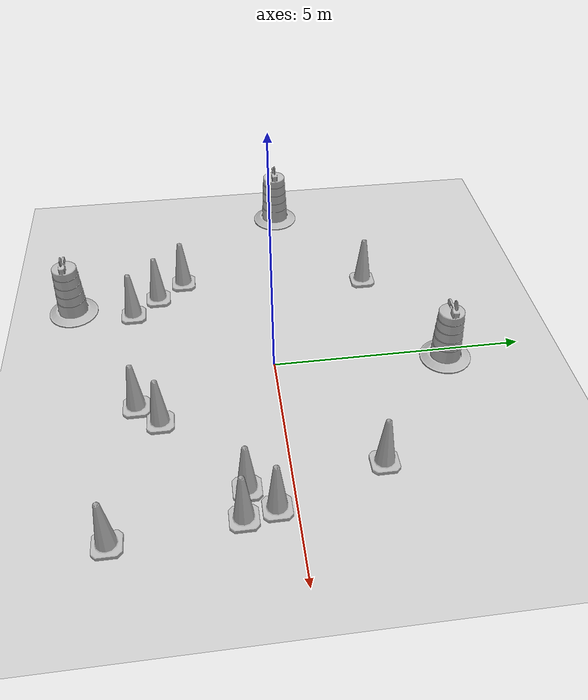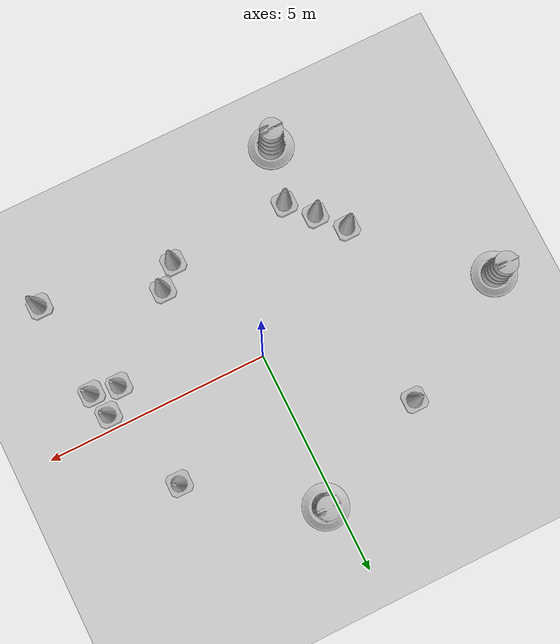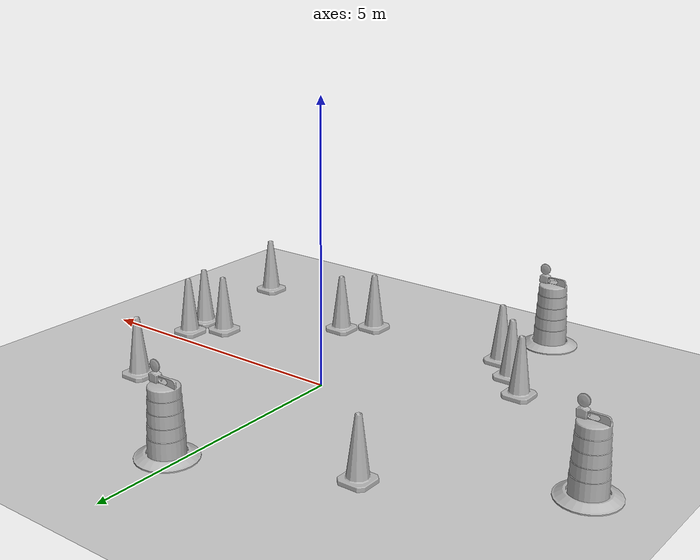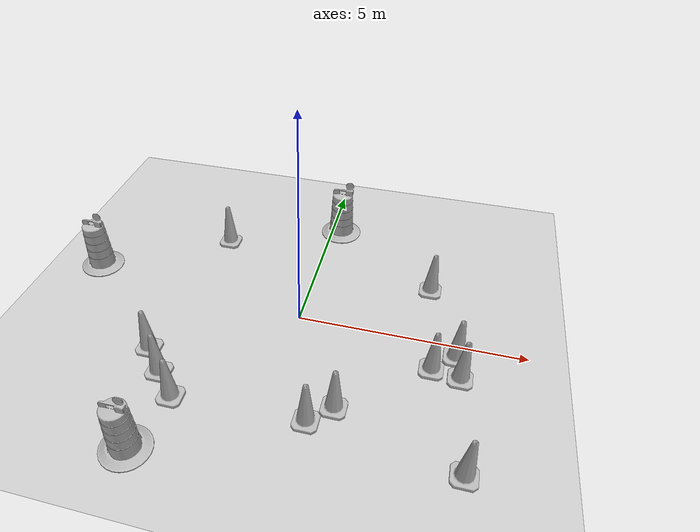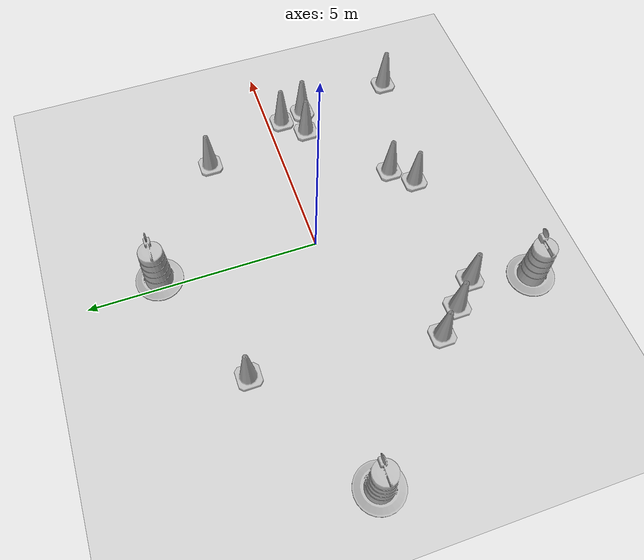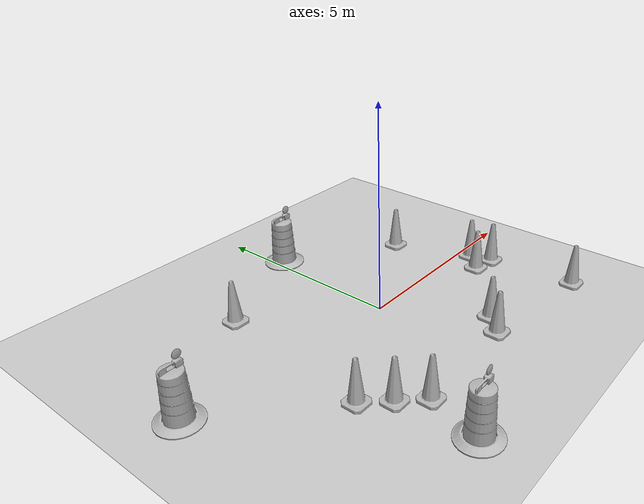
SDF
<sdf version="1.7">
 <world name="default">
  <light name="sun" type="directional">
   <pose>0 0 10 0 -0 0</pose>
   <diffuse>0.8 0.8 0.8 1</diffuse>
   <specular>0.2 0.2 0.2 1</specular>
   <attenuation>
    <range>1000</range>
    <constant>0.9</constant>
    <linear>0.01</linear>
    <quadratic>0.001</quadratic>
   </attenuation>
   <direction>-0.5 0.1 -0.9</direction>
   <spot><inner_angle>0</inner_angle><outer_angle>0</outer_angle><falloff>0</falloff></spot>
  </light>
  <model name="ground_plane">
   <static>1</static>
   <link name="link">
    <collision name="collision">
     <geometry><plane><normal>0 0 1</normal><size>100 100</size></plane></geometry>
     <surface>
      <contact><collide_bitmask>65535</collide_bitmask></contact>
      <friction><ode><mu>100</mu><mu2>50</mu2></ode></friction>
     </surface>
    </collision>
    <visual name="visual">
     <cast_shadows>0</cast_shadows>
     <geometry><plane><normal>0 0 1</normal><size>100 100</size></plane></geometry>
     <material>
      <script><uri>file://media/materials/scripts/gazebo.material</uri><name>Gazebo/Grey</name></script>
     </material>
    </visual>
   </link>
  </model>
  <gravity>0 0 -9.8</gravity>
  <magnetic_field>6e-06 2.3e-05 -4.2e-05</magnetic_field>
  <atmosphere type="adiabatic"/>
  <physics type="ode">
   <max_step_size>0.001</max_step_size>
   <real_time_factor>1</real_time_factor>
   <real_time_update_rate>1000</real_time_update_rate>
  </physics>
  <scene><ambient>0.4 0.4 0.4 1</ambient><background>0.7 0.7 0.7 1</background><shadows>1</shadows></scene>
  <audio><device>default</device></audio>
  <spherical_coordinates>
   <surface_model>EARTH_WGS84</surface_model>
   <latitude_deg>0</latitude_deg>
   <longitude_deg>0</longitude_deg>
   <elevation>0</elevation>
   <heading_deg>0</heading_deg>
  </spherical_coordinates>
  <model name="Construction Cone">
   <link name="link">
    <collision name="collision">
     <geometry>
      <mesh><scale>10 10 10</scale><uri>model://construction_cone/meshes/construction_cone.dae</uri></mesh>
     </geometry>
    </collision>
    <visual name="visual">
     <geometry>
      <mesh><scale>10 10 10</scale><uri>model://construction_cone/meshes/construction_cone.dae</uri></mesh>
     </geometry>
    </visual>
    <inertial>
     <inertia><ixx>1</ixx><ixy>0</ixy><ixz>0</ixz><iyy>1</iyy><iyz>0</iyz><izz>1</izz></inertia>
     <mass>1</mass>
    </inertial>
   </link>
   <pose>-2.86661 -1.70923 -0 0 -0 0</pose>
  </model>
  <model name="Construction Cone_0">
   <link name="link">
    <collision name="collision">
     <geometry>
      <mesh><scale>10 10 10</scale><uri>model://construction_cone/meshes/construction_cone.dae</uri></mesh>
     </geometry>
    </collision>
    <visual name="visual">
     <geometry>
      <mesh><scale>10 10 10</scale><uri>model://construction_cone/meshes/construction_cone.dae</uri></mesh>
     </geometry>
    </visual>
    <inertial>
     <inertia><ixx>1</ixx><ixy>0</ixy><ixz>0</ixz><iyy>1</iyy><iyz>0</iyz><izz>1</izz></inertia>
     <mass>1</mass>
    </inertial>
   </link>
   <pose>2.76862 1.63405 -4e-06 4e-06 -1e-06 0</pose>
  </model>
  <model name="Construction Cone_1">
   <link name="link">
    <collision name="collision">
     <geometry>
      <mesh><scale>10 10 10</scale><uri>model://construction_cone/meshes/construction_cone.dae</uri></mesh>
     </geometry>
    </collision>
    <visual name="visual">
     <geometry>
      <mesh><scale>10 10 10</scale><uri>model://construction_cone/meshes/construction_cone.dae</uri></mesh>
     </geometry>
    </visual>
    <inertial>
     <inertia><ixx>1</ixx><ixy>0</ixy><ixz>0</ixz><iyy>1</iyy><iyz>0</iyz><izz>1</izz></inertia>
     <mass>1</mass>
    </inertial>
   </link>
   <pose>-2.46525 2.25597 -0 0 -1e-06 0</pose>
  </model>
  <model name="Construction Cone_2">
   <link name="link">
    <collision name="collision">
     <geometry>
      <mesh><scale>10 10 10</scale><uri>model://construction_cone/meshes/construction_cone.dae</uri></mesh>
     </geometry>
    </collision>
    <visual name="visual">
     <geometry>
      <mesh><scale>10 10 10</scale><uri>model://construction_cone/meshes/construction_cone.dae</uri></mesh>
     </geometry>
    </visual>
    <inertial>
     <inertia><ixx>1</ixx><ixy>0</ixy><ixz>0</ixz><iyy>1</iyy><iyz>0</iyz><izz>1</izz></inertia>
     <mass>1</mass>
    </inertial>
   </link>
   <pose>0.847003 -2.6808 -0 0 -0 0</pose>
  </model>
  <model name="Construction Cone_3">
   <link name="link">
    <collision name="collision">
     <geometry>
      <mesh><scale>10 10 10</scale><uri>model://construction_cone/meshes/construction_cone.dae</uri></mesh>
     </geometry>
    </collision>
    <visual name="visual">
     <geometry>
      <mesh><scale>10 10 10</scale><uri>model://construction_cone/meshes/construction_cone.dae</uri></mesh>
     </geometry>
    </visual>
    <inertial>
     <inertia><ixx>1</ixx><ixy>0</ixy><ixz>0</ixz><iyy>1</iyy><iyz>0</iyz><izz>1</izz></inertia>
     <mass>1</mass>
    </inertial>
   </link>
   <pose>3.02836 -0.795228 -0 0 -0 0</pose>
  </model>
  <model name="Construction Cone_4">
   <link name="link">
    <collision name="collision">
     <geometry>
      <mesh><scale>10 10 10</scale><uri>model://construction_cone/meshes/construction_cone.dae</uri></mesh>
     </geometry>
    </collision>
    <visual name="visual">
     <geometry>
      <mesh><scale>10 10 10</scale><uri>model://construction_cone/meshes/construction_cone.dae</uri></mesh>
     </geometry>
    </visual>
    <inertial>
     <inertia><ixx>1</ixx><ixy>0</ixy><ixz>0</ixz><iyy>1</iyy><iyz>0</iyz><izz>1</izz></inertia>
     <mass>1</mass>
    </inertial>
   </link>
   <pose>3.83089 -3.09557 0 -0 -0 -0</pose>
  </model>
  <model name="Construction Barrel">
   <link name="link">
    <inertial>
     <pose>0 0 0.4 0 -0 0</pose>
     <mass>500</mass>
     <inertia><ixx>51.2096</ixx><iyy>51.2096</iyy><izz>25</izz><ixy>0</ixy><ixz>0</ixz><iyz>0</iyz></inertia>
    </inertial>
    <collision name="collision">
     <geometry><mesh><uri>model://construction_barrel/meshes/construction_barrel.dae</uri></mesh></geometry>
    </collision>
    <visual name="visual">
     <geometry><mesh><uri>model://construction_barrel/meshes/construction_barrel.dae</uri></mesh></geometry>
    </visual>
   </link>
   <pose>0.230678 3.42686 0 0 0 -1.5e-05</pose>
  </model>
  <model name="Construction Barrel_0">
   <link name="link">
    <inertial>
     <pose>0 0 0.4 0 -0 0</pose>
     <mass>500</mass>
     <inertia><ixx>51.2096</ixx><iyy>51.2096</iyy><izz>25</izz><ixy>0</ixy><ixz>0</ixz><iyz>0</iyz></inertia>
    </inertial>
    <collision name="collision">
     <geometry><mesh><uri>model://construction_barrel/meshes/construction_barrel.dae</uri></mesh></geometry>
    </collision>
    <visual name="visual">
     <geometry><mesh><uri>model://construction_barrel/meshes/construction_barrel.dae</uri></mesh></geometry>
    </visual>
   </link>
   <pose>-5.25812 0.603337 -0 1e-06 -1e-06 -1.2e-05</pose>
  </model>
  <model name="Construction Barrel_1">
   <link name="link">
    <inertial>
     <pose>0 0 0.4 0 -0 0</pose>
     <mass>500</mass>
     <inertia><ixx>51.2096</ixx><iyy>51.2096</iyy><izz>25</izz><ixy>0</ixy><ixz>0</ixz><iyz>0</iyz></inertia>
    </inertial>
    <collision name="collision">
     <geometry><mesh><uri>model://construction_barrel/meshes/construction_barrel.dae</uri></mesh></geometry>
    </collision>
    <visual name="visual">
     <geometry><mesh><uri>model://construction_barrel/meshes/construction_barrel.dae</uri></mesh></geometry>
    </visual>
   </link>
   <pose>-2.19725 -4.06249 -1e-06 0 5e-06 -1e-05</pose>
  </model>
  <model name="Construction Cone_5">
   <link name="link">
    <collision name="collision">
     <geometry>
      <mesh><scale>10 10 10</scale><uri>model://construction_cone/meshes/construction_cone.dae</uri></mesh>
     </geometry>
    </collision>
    <visual name="visual">
     <geometry>
      <mesh><scale>10 10 10</scale><uri>model://construction_cone/meshes/construction_cone.dae</uri></mesh>
     </geometry>
    </visual>
    <inertial>
     <inertia><ixx>1</ixx><ixy>0</ixy><ixz>0</ixz><iyy>1</iyy><iyz>0</iyz><izz>1</izz></inertia>
     <mass>1</mass>
    </inertial>
   </link>
   <pose>-2.37947 -2.26441 -0 0 -1e-06 0</pose>
  </model>
  <model name="Construction Cone_6">
   <link name="link">
    <collision name="collision">
     <geometry>
      <mesh><scale>10 10 10</scale><uri>model://construction_cone/meshes/construction_cone.dae</uri></mesh>
     </geometry>
    </collision>
    <visual name="visual">
     <geometry>
      <mesh><scale>10 10 10</scale><uri>model://construction_cone/meshes/construction_cone.dae</uri></mesh>
     </geometry>
    </visual>
    <inertial>
     <inertia><ixx>1</ixx><ixy>0</ixy><ixz>0</ixz><iyy>1</iyy><iyz>0</iyz><izz>1</izz></inertia>
     <mass>1</mass>
    </inertial>
   </link>
   <pose>-1.88612 -2.78775 -9e-06 1e-06 -0 0</pose>
  </model>
  <model name="Construction Cone_7">
   <link name="link">
    <collision name="collision">
     <geometry>
      <mesh><scale>10 10 10</scale><uri>model://construction_cone/meshes/construction_cone.dae</uri></mesh>
     </geometry>
    </collision>
    <visual name="visual">
     <geometry>
      <mesh><scale>10 10 10</scale><uri>model://construction_cone/meshes/construction_cone.dae</uri></mesh>
     </geometry>
    </visual>
    <inertial>
     <inertia><ixx>1</ixx><ixy>0</ixy><ixz>0</ixz><iyy>1</iyy><iyz>0</iyz><izz>1</izz></inertia>
     <mass>1</mass>
    </inertial>
   </link>
   <pose>1.29824 -2.2409 -5e-06 -4e-06 1e-06 0</pose>
  </model>
  <model name="Construction Cone_8">
   <link name="link">
    <collision name="collision">
     <geometry>
      <mesh><scale>10 10 10</scale><uri>model://construction_cone/meshes/construction_cone.dae</uri></mesh>
     </geometry>
    </collision>
    <visual name="visual">
     <geometry>
      <mesh><scale>10 10 10</scale><uri>model://construction_cone/meshes/construction_cone.dae</uri></mesh>
     </geometry>
    </visual>
    <inertial>
     <inertia><ixx>1</ixx><ixy>0</ixy><ixz>0</ixz><iyy>1</iyy><iyz>0</iyz><izz>1</izz></inertia>
     <mass>1</mass>
    </inertial>
   </link>
   <pose>3.48986 -0.333242 -0 0 -0 0</pose>
  </model>
  <model name="Construction Cone_9">
   <link name="link">
    <collision name="collision">
     <geometry>
      <mesh><scale>10 10 10</scale><uri>model://construction_cone/meshes/construction_cone.dae</uri></mesh>
     </geometry>
    </collision>
    <visual name="visual">
     <geometry>
      <mesh><scale>10 10 10</scale><uri>model://construction_cone/meshes/construction_cone.dae</uri></mesh>
     </geometry>
    </visual>
    <inertial>
     <inertia><ixx>1</ixx><ixy>0</ixy><ixz>0</ixz><iyy>1</iyy><iyz>0</iyz><izz>1</izz></inertia>
     <mass>1</mass>
    </inertial>
   </link>
   <pose>3.62262 -0.896709 -0 0 -1e-06 0</pose>
  </model>
 </world>
</sdf>
